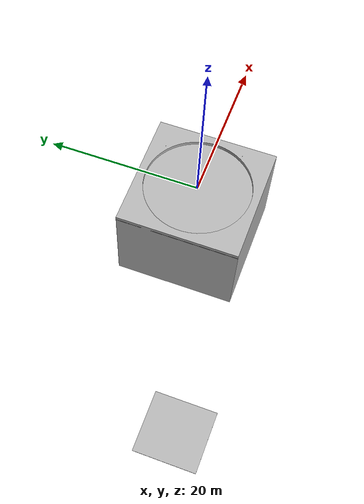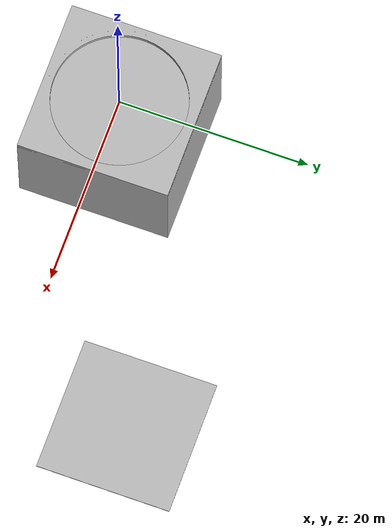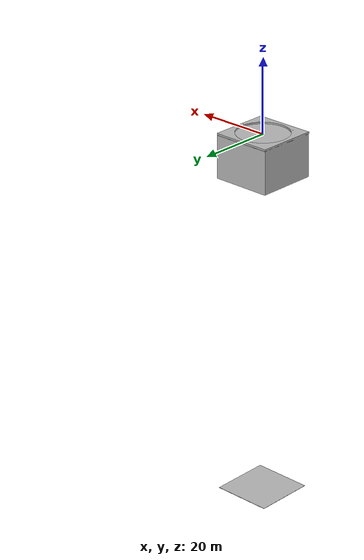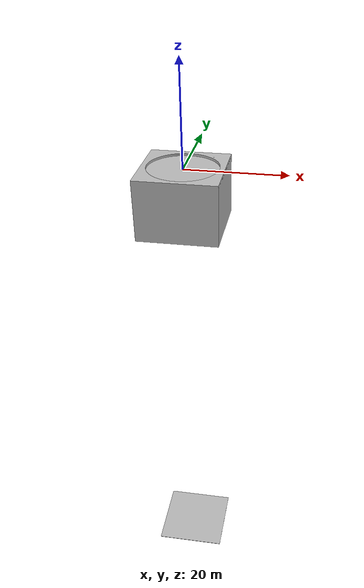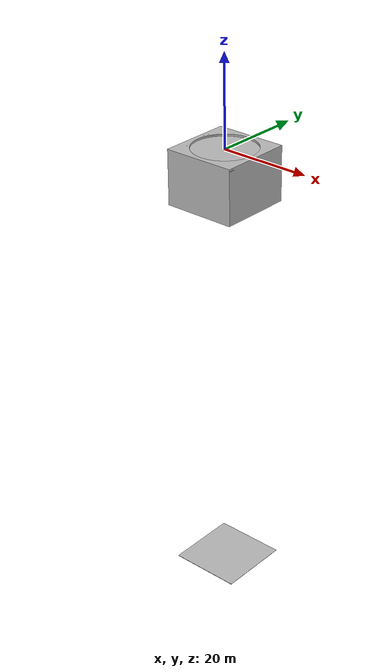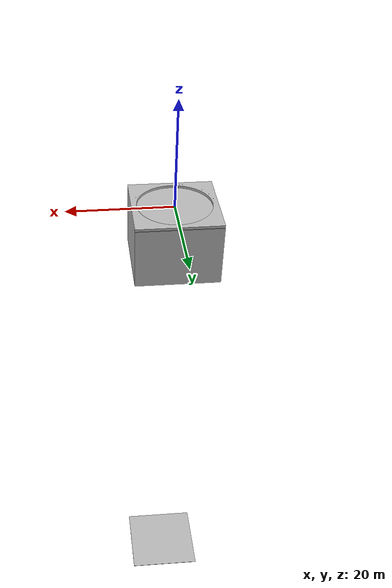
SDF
<sdf version="1.6">
 <world name="empty_underwater">
  <physics name="default_physics" default="1" type="ode">
   <max_step_size>0.002</max_step_size>
   <real_time_factor>1</real_time_factor>
   <real_time_update_rate>500</real_time_update_rate>
   <ode>
    <solver>
     <type>quick</type>
     <iters>50</iters>
     <sor>0.5</sor>
     <use_dynamic_moi_rescaling>0</use_dynamic_moi_rescaling>
    </solver>
    <constraints>
     <cfm>0</cfm>
     <erp>0.2</erp>
     <contact_max_correcting_vel>100</contact_max_correcting_vel>
     <contact_surface_layer>0.001</contact_surface_layer>
    </constraints>
   </ode>
  </physics>
  <scene>
   <ambient>0.01 0.01 0.01 1</ambient>
   <sky><clouds><speed>12</speed></clouds></sky>
   <shadows>1</shadows>
   <fog>
    <color>0.1 0.2 0.3 1</color>
    <type>linear</type>
    <density>0.001</density>
    <start>10</start>
    <end>200</end>
   </fog>
   <background>0.7 0.7 0.7 1</background>
  </scene>
  <spherical_coordinates>
   <latitude_deg>56.719</latitude_deg>
   <longitude_deg>3.51562</longitude_deg>
   <surface_model>EARTH_WGS84</surface_model>
   <elevation>0</elevation>
   <heading_deg>0</heading_deg>
  </spherical_coordinates>
  <light name="sun" type="directional">
   <pose>0 0 10 0 -0 0</pose>
   <diffuse>0.8 0.8 0.8 1</diffuse>
   <specular>0.1 0.1 0.1 1</specular>
   <attenuation>
    <range>1000</range>
    <constant>0.9</constant>
    <linear>0.01</linear>
    <quadratic>0.001</quadratic>
   </attenuation>
   <direction>-0.5 0.5 -1</direction>
  </light>
  <model name="ocean_box">
   <static>1</static>
   <link name="link">
    <visual name="ground">
     <cast_shadows>0</cast_shadows>
     <pose>0 0 -100 0 -0 0</pose>
     <geometry><box><size>16 16 0.1</size></box></geometry>
     <material>
      <script>
       <uri>file://Media/materials/scripts/sand.material</uri>
       <name>UUVSimulator/SandAndStones</name>
      </script>
     </material>
    </visual>
    <collision name="ground">
     <pose>0 0 -100 0 -0 0</pose>
     <geometry><box><size>16 16 0.1</size></box></geometry>
    </collision>
    <visual name="surface">
     <cast_shadows>0</cast_shadows>
     <geometry><box><size>16 16 0.1</size></box></geometry>
     <material>
      <script>
       <uri>file://Media/materials/scripts/water.material</uri>
       <name>UUVSimulator/StaticDeepWater</name>
      </script>
     </material>
    </visual>
   </link>
  </model>
  <plugin name="underwater_current_plugin" filename="libuuv_underwater_current_ros_plugin.so">
   <namespace>hydrodynamics</namespace>
   <constant_current>
    <topic>current_velocity</topic>
    <velocity><mean>0</mean><min>0</min><max>5</max><mu>0.0</mu><noiseAmp>0.0</noiseAmp></velocity>
    <horizontal_angle>
     <mean>0</mean>
     <min>-3.141592653589793238</min>
     <max>3.141592653589793238</max>
     <mu>0.0</mu>
     <noiseAmp>0.0</noiseAmp>
    </horizontal_angle>
    <vertical_angle>
     <mean>0</mean>
     <min>-3.141592653589793238</min>
     <max>3.141592653589793238</max>
     <mu>0.0</mu>
     <noiseAmp>0.0</noiseAmp>
    </vertical_angle>
   </constant_current>
  </plugin>
  <plugin name="sc_interface" filename="libuuv_sc_ros_interface_plugin.so"/>
  <gravity>0 0 -9.8</gravity>
  <magnetic_field>6e-06 2.3e-05 -4.2e-05</magnetic_field>
  <atmosphere type="adiabatic"/>
  <model name="empty_pool">
   <pose>0 0 -5.5 -3.14159 0 0</pose>
   <static>1</static>
   <link name="link">
    <inertial>
     <mass>1</mass>
     <inertia><ixx>0.083</ixx><ixy>0</ixy><ixz>0</ixz><iyy>0.083</iyy><iyz>0</iyz><izz>0.083</izz></inertia>
    </inertial>
    <collision name="collision">
     <geometry><mesh><uri>model://empty_pool/meshes/pool.dae</uri><scale>1 1 1</scale></mesh></geometry>
    </collision>
    <visual name="visual">
     <geometry><mesh><uri>model://empty_pool/meshes/pool.dae</uri><scale>1 1 1</scale></mesh></geometry>
    </visual>
   </link>
  </model>
  <model name="gate">
   <pose>-0.8 0 -1.5 0 -0 0</pose>
   <static>1</static>
   <link name="link">
    <inertial>
     <mass>1</mass>
     <inertia><ixx>0.083</ixx><ixy>0</ixy><ixz>0</ixz><iyy>0.083</iyy><iyz>0</iyz><izz>0.083</izz></inertia>
    </inertial>
    <collision name="collision">
     <geometry><mesh><uri>model://gate/meshes/gate.dae</uri><scale>1 1 1</scale></mesh></geometry>
    </collision>
    <visual name="visual">
     <geometry><mesh><uri>model://gate/meshes/gate.dae</uri><scale>1 1 1</scale></mesh></geometry>
    </visual>
   </link>
  </model>
  <model name="pipe">
   <pose>3.6 0 -2 0 -0 0</pose>
   <static>1</static>
   <link name="link">
    <inertial>
     <mass>1</mass>
     <inertia><ixx>0.083</ixx><ixy>0</ixy><ixz>0</ixz><iyy>0.083</iyy><iyz>0</iyz><izz>0.083</izz></inertia>
    </inertial>
    <collision name="collision">
     <geometry><mesh><uri>model://pipe/meshes/pipe.dae</uri><scale>1 1 1</scale></mesh></geometry>
    </collision>
    <visual name="visual">
     <geometry><mesh><uri>model://pipe/meshes/pipe.dae</uri><scale>1 1 1</scale></mesh></geometry>
    </visual>
   </link>
  </model>
 </world>
</sdf>
